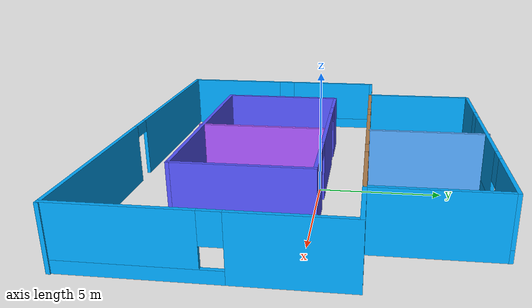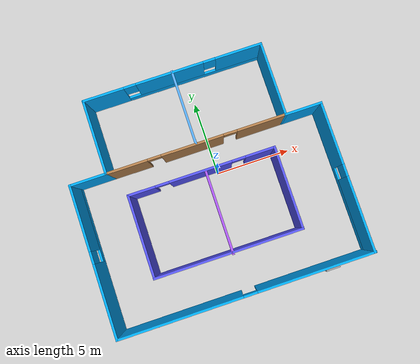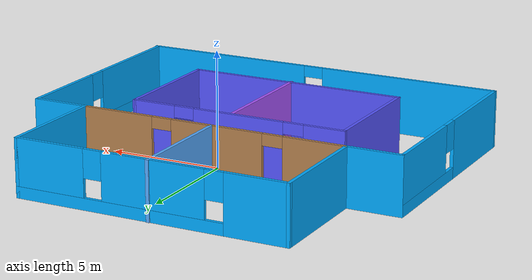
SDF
<?xml version='1.0'?>
<sdf version='1.6'>
  <model name='Building'>
    <pose frame=''>-0.730001 -0.551384 0 0 -0 0</pose>
    <link name='Door_2'>
      <collision name='Door_2_Collision'>
        <geometry>
          <box>
            <size>0.9 0.17 2</size>
          </box>
        </geometry>
        <pose frame=''>0 0 1 0 -0 0</pose>
      </collision>
      <visual name='Door_2_Visual'>
        <pose frame=''>0 0 1 0 -0 0</pose>
        <geometry>
          <box>
            <size>0.9 0.17 2</size>
          </box>
        </geometry>
        <material>
          <script>
            <uri>file://media/materials/scripts/gazebo.material</uri>
            <name>Gazebo/Grey</name>
          </script>
        </material>
      </visual>
      <pose frame=''>-5.33502 -7.44959 0 0 -0 0</pose>
    </link>
    <link name='Door_4'>
      <collision name='Door_4_Collision'>
        <geometry>
          <box>
            <size>0.9 0.17 2</size>
          </box>
        </geometry>
        <pose frame=''>0 0 1 0 -0 0</pose>
      </collision>
      <visual name='Door_4_Visual'>
        <pose frame=''>0 0 1 0 -0 0</pose>
        <geometry>
          <box>
            <size>0.9 0.17 2</size>
          </box>
        </geometry>
        <material>
          <script>
            <uri>file://media/materials/scripts/gazebo.material</uri>
            <name>Gazebo/Grey</name>
          </script>
        </material>
      </visual>
      <pose frame=''>5.5981 -7.54263 0 0 -0 0</pose>
    </link>
    <link name='Wall_0'>
      <pose frame=''>-8.2999 -2.44741 0 0 -0 1.57078</pose>
      <visual name='Wall_0_Visual_0'>
        <pose frame=''>-2.57696 0 1.25 0 -0 0</pose>
        <geometry>
          <box>
            <size>4.84608 0.15 2.5</size>
          </box>
        </geometry>
        <material>
          <script>
            <uri>file://media/materials/scripts/gazebo.material</uri>
            <name>Gazebo/Grey</name>
          </script>
          <ambient>0 0.666667 1 1</ambient>
        </material>
        <meta>
          <layer>0</layer>
        </meta>
      </visual>
      <collision name='Wall_0_Collision_0'>
        <geometry>
          <box>
            <size>4.84608 0.15 2.5</size>
          </box>
        </geometry>
        <pose frame=''>-2.57696 0 1.25 0 -0 0</pose>
      </collision>
      <visual name='Wall_0_Visual_1'>
        <pose frame=''>2.42304 0 0.25 0 -0 0</pose>
        <geometry>
          <box>
            <size>5.15392 0.15 0.5</size>
          </box>
        </geometry>
        <material>
          <script>
            <uri>file://media/materials/scripts/gazebo.material</uri>
            <name>Gazebo/Grey</name>
          </script>
          <ambient>0 0.666667 1 1</ambient>
        </material>
        <meta>
          <layer>0</layer>
        </meta>
      </visual>
      <collision name='Wall_0_Collision_1'>
        <geometry>
          <box>
            <size>5.15392 0.15 0.5</size>
          </box>
        </geometry>
        <pose frame=''>2.42304 0 0.25 0 -0 0</pose>
      </collision>
      <visual name='Wall_0_Visual_2'>
        <pose frame=''>2.82304 0 1.5 0 -0 0</pose>
        <geometry>
          <box>
            <size>4.35392 0.15 2</size>
          </box>
        </geometry>
        <material>
          <script>
            <uri>file://media/materials/scripts/gazebo.material</uri>
            <name>Gazebo/Grey</name>
          </script>
          <ambient>0 0.666667 1 1</ambient>
        </material>
        <meta>
          <layer>0</layer>
        </meta>
      </visual>
      <collision name='Wall_0_Collision_2'>
        <geometry>
          <box>
            <size>4.35392 0.15 2</size>
          </box>
        </geometry>
        <pose frame=''>2.82304 0 1.5 0 -0 0</pose>
      </collision>
      <visual name='Wall_0_Visual_3'>
        <pose frame=''>0.246081 0 1.9 0 -0 0</pose>
        <geometry>
          <box>
            <size>0.8 0.15 1.2</size>
          </box>
        </geometry>
        <material>
          <script>
            <uri>file://media/materials/scripts/gazebo.material</uri>
            <name>Gazebo/Grey</name>
          </script>
          <ambient>0 0.666667 1 1</ambient>
        </material>
        <meta>
          <layer>0</layer>
        </meta>
      </visual>
      <collision name='Wall_0_Collision_3'>
        <geometry>
          <box>
            <size>0.8 0.15 1.2</size>
          </box>
        </geometry>
        <pose frame=''>0.246081 0 1.9 0 -0 0</pose>
      </collision>
    </link>
    <link name='Wall_11'>
      <collision name='Wall_11_Collision'>
        <geometry>
          <box>
            <size>2.5 0.15 2.5</size>
          </box>
        </geometry>
        <pose frame=''>0 0 1.25 0 -0 0</pose>
      </collision>
      <visual name='Wall_11_Visual'>
        <pose frame=''>0 0 1.25 0 -0 0</pose>
        <geometry>
          <box>
            <size>2.5 0.15 2.5</size>
          </box>
        </geometry>
        <material>
          <script>
            <uri>file://media/materials/scripts/gazebo.material</uri>
            <name>Gazebo/Grey</name>
          </script>
          <ambient>0 0.666667 1 1</ambient>
        </material>
        <meta>
          <layer>0</layer>
        </meta>
      </visual>
      <pose frame=''>7.075 2.47738 0 0 -0 0</pose>
    </link>
    <link name='Wall_13'>
      <pose frame=''>8.25 -2.44762 0 0 0 -1.5708</pose>
      <visual name='Wall_13_Visual_0'>
        <pose frame=''>-2.90781 0 1.25 0 -0 0</pose>
        <geometry>
          <box>
            <size>4.18438 0.15 2.5</size>
          </box>
        </geometry>
        <material>
          <script>
            <uri>file://media/materials/scripts/gazebo.material</uri>
            <name>Gazebo/Grey</name>
          </script>
          <ambient>0 0.666667 1 1</ambient>
        </material>
        <meta>
          <layer>0</layer>
        </meta>
      </visual>
      <collision name='Wall_13_Collision_0'>
        <geometry>
          <box>
            <size>4.18438 0.15 2.5</size>
          </box>
        </geometry>
        <pose frame=''>-2.90781 0 1.25 0 -0 0</pose>
      </collision>
      <visual name='Wall_13_Visual_1'>
        <pose frame=''>2.09219 0 0.25 0 -0 0</pose>
        <geometry>
          <box>
            <size>5.81562 0.15 0.5</size>
          </box>
        </geometry>
        <material>
          <script>
            <uri>file://media/materials/scripts/gazebo.material</uri>
            <name>Gazebo/Grey</name>
          </script>
          <ambient>0 0.666667 1 1</ambient>
        </material>
        <meta>
          <layer>0</layer>
        </meta>
      </visual>
      <collision name='Wall_13_Collision_1'>
        <geometry>
          <box>
            <size>5.81562 0.15 0.5</size>
          </box>
        </geometry>
        <pose frame=''>2.09219 0 0.25 0 -0 0</pose>
      </collision>
      <visual name='Wall_13_Visual_2'>
        <pose frame=''>2.49219 0 1.5 0 -0 0</pose>
        <geometry>
          <box>
            <size>5.01562 0.15 2</size>
          </box>
        </geometry>
        <material>
          <script>
            <uri>file://media/materials/scripts/gazebo.material</uri>
            <name>Gazebo/Grey</name>
          </script>
          <ambient>0 0.666667 1 1</ambient>
        </material>
        <meta>
          <layer>0</layer>
        </meta>
      </visual>
      <collision name='Wall_13_Collision_2'>
        <geometry>
          <box>
            <size>5.01562 0.15 2</size>
          </box>
        </geometry>
        <pose frame=''>2.49219 0 1.5 0 -0 0</pose>
      </collision>
      <visual name='Wall_13_Visual_3'>
        <pose frame=''>-0.415615 0 1.9 0 -0 0</pose>
        <geometry>
          <box>
            <size>0.8 0.15 1.2</size>
          </box>
        </geometry>
        <material>
          <script>
            <uri>file://media/materials/scripts/gazebo.material</uri>
            <name>Gazebo/Grey</name>
          </script>
          <ambient>0 0.666667 1 1</ambient>
        </material>
        <meta>
          <layer>0</layer>
        </meta>
      </visual>
      <collision name='Wall_13_Collision_3'>
        <geometry>
          <box>
            <size>0.8 0.15 1.2</size>
          </box>
        </geometry>
        <pose frame=''>-0.415615 0 1.9 0 -0 0</pose>
      </collision>
    </link>
    <link name='Wall_15'>
      <pose frame=''>1e-06 -7.37262 0 0 -0 0</pose>
      <visual name='Wall_15_Visual_0'>
        <pose frame=''>-4.31184 0 1.25 0 -0 0</pose>
        <geometry>
          <box>
            <size>8.12632 0.15 2.5</size>
          </box>
        </geometry>
        <material>
          <script>
            <uri>file://media/materials/scripts/gazebo.material</uri>
            <name>Gazebo/Grey</name>
          </script>
          <ambient>0 0.666667 1 1</ambient>
        </material>
        <meta>
          <layer>0</layer>
        </meta>
      </visual>
      <collision name='Wall_15_Collision_0'>
        <geometry>
          <box>
            <size>8.12632 0.15 2.5</size>
          </box>
        </geometry>
        <pose frame=''>-4.31184 0 1.25 0 -0 0</pose>
      </collision>
      <visual name='Wall_15_Visual_1'>
        <pose frame=''>4.51316 0 1.25 0 -0 0</pose>
        <geometry>
          <box>
            <size>7.72368 0.15 2.5</size>
          </box>
        </geometry>
        <material>
          <script>
            <uri>file://media/materials/scripts/gazebo.material</uri>
            <name>Gazebo/Grey</name>
          </script>
          <ambient>0 0.666667 1 1</ambient>
        </material>
        <meta>
          <layer>0</layer>
        </meta>
      </visual>
      <collision name='Wall_15_Collision_1'>
        <geometry>
          <box>
            <size>7.72368 0.15 2.5</size>
          </box>
        </geometry>
        <pose frame=''>4.51316 0 1.25 0 -0 0</pose>
      </collision>
      <visual name='Wall_15_Visual_2'>
        <pose frame=''>0.201321 0 2.25 0 -0 0</pose>
        <geometry>
          <box>
            <size>0.9 0.15 0.5</size>
          </box>
        </geometry>
        <material>
          <script>
            <uri>file://media/materials/scripts/gazebo.material</uri>
            <name>Gazebo/Grey</name>
          </script>
          <ambient>0 0.666667 1 1</ambient>
        </material>
        <meta>
          <layer>0</layer>
        </meta>
      </visual>
      <collision name='Wall_15_Collision_2'>
        <geometry>
          <box>
            <size>0.9 0.15 0.5</size>
          </box>
        </geometry>
        <pose frame=''>0.201321 0 2.25 0 -0 0</pose>
      </collision>
    </link>
    <link name='Wall_17'>
      <collision name='Wall_17_Collision'>
        <geometry>
          <box>
            <size>5.5 0.15 2.5</size>
          </box>
        </geometry>
        <pose frame=''>0 0 1.25 0 -0 0</pose>
      </collision>
      <visual name='Wall_17_Visual'>
        <pose frame=''>0 0 1.25 0 -0 0</pose>
        <geometry>
          <box>
            <size>5.5 0.15 2.5</size>
          </box>
        </geometry>
        <material>
          <script>
            <uri>file://media/materials/scripts/gazebo.material</uri>
            <name>Gazebo/Grey</name>
          </script>
          <ambient>0.333333 0.333333 1 1</ambient>
        </material>
        <meta>
          <layer>0</layer>
        </meta>
      </visual>
      <pose frame=''>-5.05113 -1.93977 0 0 0 -1.5708</pose>
    </link>
    <link name='Wall_19'>
      <pose frame=''>-0.251134 0.735233 0 0 -0 0</pose>
      <visual name='Wall_19_Visual_0'>
        <pose frame=''>-3.95586 0 1.25 0 -0 0</pose>
        <geometry>
          <box>
            <size>1.83829 0.15 2.5</size>
          </box>
        </geometry>
        <material>
          <script>
            <uri>file://media/materials/scripts/gazebo.material</uri>
            <name>Gazebo/Grey</name>
          </script>
          <ambient>0.333333 0.333333 1 1</ambient>
        </material>
        <meta>
          <layer>0</layer>
        </meta>
      </visual>
      <collision name='Wall_19_Collision_0'>
        <geometry>
          <box>
            <size>1.83829 0.15 2.5</size>
          </box>
        </geometry>
        <pose frame=''>-3.95586 0 1.25 0 -0 0</pose>
      </collision>
      <visual name='Wall_19_Visual_1'>
        <pose frame=''>-0.076888 0 1.25 0 -0 0</pose>
        <geometry>
          <box>
            <size>4.11965 0.15 2.5</size>
          </box>
        </geometry>
        <material>
          <script>
            <uri>file://media/materials/scripts/gazebo.material</uri>
            <name>Gazebo/Grey</name>
          </script>
          <ambient>0.333333 0.333333 1 1</ambient>
        </material>
        <meta>
          <layer>0</layer>
        </meta>
      </visual>
      <collision name='Wall_19_Collision_1'>
        <geometry>
          <box>
            <size>4.11965 0.15 2.5</size>
          </box>
        </geometry>
        <pose frame=''>-0.076888 0 1.25 0 -0 0</pose>
      </collision>
      <visual name='Wall_19_Visual_2'>
        <pose frame=''>3.87897 0 1.25 0 -0 0</pose>
        <geometry>
          <box>
            <size>1.99206 0.15 2.5</size>
          </box>
        </geometry>
        <material>
          <script>
            <uri>file://media/materials/scripts/gazebo.material</uri>
            <name>Gazebo/Grey</name>
          </script>
          <ambient>0.333333 0.333333 1 1</ambient>
        </material>
        <meta>
          <layer>0</layer>
        </meta>
      </visual>
      <collision name='Wall_19_Collision_2'>
        <geometry>
          <box>
            <size>1.99206 0.15 2.5</size>
          </box>
        </geometry>
        <pose frame=''>3.87897 0 1.25 0 -0 0</pose>
      </collision>
      <visual name='Wall_19_Visual_3'>
        <pose frame=''>-2.58671 0 2.25 0 -0 0</pose>
        <geometry>
          <box>
            <size>0.9 0.15 0.5</size>
          </box>
        </geometry>
        <material>
          <script>
            <uri>file://media/materials/scripts/gazebo.material</uri>
            <name>Gazebo/Grey</name>
          </script>
          <ambient>0.333333 0.333333 1 1</ambient>
        </material>
        <meta>
          <layer>0</layer>
        </meta>
      </visual>
      <collision name='Wall_19_Collision_3'>
        <geometry>
          <box>
            <size>0.9 0.15 0.5</size>
          </box>
        </geometry>
        <pose frame=''>-2.58671 0 2.25 0 -0 0</pose>
      </collision>
      <visual name='Wall_19_Visual_4'>
        <pose frame=''>2.43294 0 2.25 0 -0 0</pose>
        <geometry>
          <box>
            <size>0.9 0.15 0.5</size>
          </box>
        </geometry>
        <material>
          <script>
            <uri>file://media/materials/scripts/gazebo.material</uri>
            <name>Gazebo/Grey</name>
          </script>
          <ambient>0.333333 0.333333 1 1</ambient>
        </material>
        <meta>
          <layer>0</layer>
        </meta>
      </visual>
      <collision name='Wall_19_Collision_4'>
        <geometry>
          <box>
            <size>0.9 0.15 0.5</size>
          </box>
        </geometry>
        <pose frame=''>2.43294 0 2.25 0 -0 0</pose>
      </collision>
    </link>
    <link name='Wall_2'>
      <collision name='Wall_2_Collision'>
        <geometry>
          <box>
            <size>2.5 0.15 2.5</size>
          </box>
        </geometry>
        <pose frame=''>0 0 1.25 0 -0 0</pose>
      </collision>
      <visual name='Wall_2_Visual'>
        <pose frame=''>0 0 1.25 0 -0 0</pose>
        <geometry>
          <box>
            <size>2.5 0.15 2.5</size>
          </box>
        </geometry>
        <material>
          <script>
            <uri>file://media/materials/scripts/gazebo.material</uri>
            <name>Gazebo/Grey</name>
          </script>
          <ambient>0 0.666667 1 1</ambient>
        </material>
        <meta>
          <layer>0</layer>
        </meta>
      </visual>
      <pose frame=''>-7.12479 2.47779 0 0 -0 0</pose>
    </link>
    <link name='Wall_20'>
      <collision name='Wall_20_Collision'>
        <geometry>
          <box>
            <size>5.5 0.15 2.5</size>
          </box>
        </geometry>
        <pose frame=''>0 0 1.25 0 -0 0</pose>
      </collision>
      <visual name='Wall_20_Visual'>
        <pose frame=''>0 0 1.25 0 -0 0</pose>
        <geometry>
          <box>
            <size>5.5 0.15 2.5</size>
          </box>
        </geometry>
        <material>
          <script>
            <uri>file://media/materials/scripts/gazebo.material</uri>
            <name>Gazebo/Grey</name>
          </script>
          <ambient>0.333333 0.333333 1 1</ambient>
        </material>
        <meta>
          <layer>0</layer>
        </meta>
      </visual>
      <pose frame=''>4.54887 -1.93977 0 0 0 -1.5708</pose>
    </link>
    <link name='Wall_21'>
      <collision name='Wall_21_Collision'>
        <geometry>
          <box>
            <size>9.75 0.15 2.5</size>
          </box>
        </geometry>
        <pose frame=''>0 0 1.25 0 -0 0</pose>
      </collision>
      <visual name='Wall_21_Visual'>
        <pose frame=''>0 0 1.25 0 -0 0</pose>
        <geometry>
          <box>
            <size>9.75 0.15 2.5</size>
          </box>
        </geometry>
        <material>
          <script>
            <uri>file://media/materials/scripts/gazebo.material</uri>
            <name>Gazebo/Grey</name>
          </script>
          <ambient>0.333333 0.333333 1 1</ambient>
        </material>
        <meta>
          <layer>0</layer>
        </meta>
      </visual>
      <pose frame=''>-0.251134 -4.61477 0 0 -0 3.14159</pose>
    </link>
    <link name='Wall_23'>
      <pose frame=''>-0.024896 2.47759 0 0 0 -3.5e-05</pose>
      <visual name='Wall_23_Visual_0'>
        <pose frame=''>-4.61149 0 1.25 0 -0 0</pose>
        <geometry>
          <box>
            <size>2.77681 0.15 2.5</size>
          </box>
        </geometry>
        <material>
          <script>
            <uri>file://media/materials/scripts/gazebo.material</uri>
            <name>Gazebo/Wood</name>
          </script>
          <ambient>1 1 1 1</ambient>
        </material>
        <meta>
          <layer>0</layer>
        </meta>
      </visual>
      <collision name='Wall_23_Collision_0'>
        <geometry>
          <box>
            <size>2.77681 0.15 2.5</size>
          </box>
        </geometry>
        <pose frame=''>-4.61149 0 1.25 0 -0 0</pose>
      </collision>
      <visual name='Wall_23_Visual_1'>
        <pose frame=''>-0.264836 0 1.25 0 -0 0</pose>
        <geometry>
          <box>
            <size>4.11649 0.15 2.5</size>
          </box>
        </geometry>
        <material>
          <script>
            <uri>file://media/materials/scripts/gazebo.material</uri>
            <name>Gazebo/Wood</name>
          </script>
          <ambient>1 1 1 1</ambient>
        </material>
        <meta>
          <layer>0</layer>
        </meta>
      </visual>
      <collision name='Wall_23_Collision_1'>
        <geometry>
          <box>
            <size>4.11649 0.15 2.5</size>
          </box>
        </geometry>
        <pose frame=''>-0.264836 0 1.25 0 -0 0</pose>
      </collision>
      <visual name='Wall_23_Visual_2'>
        <pose frame=''>4.34665 0 1.25 0 -0 0</pose>
        <geometry>
          <box>
            <size>3.30648 0.15 2.5</size>
          </box>
        </geometry>
        <material>
          <script>
            <uri>file://media/materials/scripts/gazebo.material</uri>
            <name>Gazebo/Wood</name>
          </script>
          <ambient>1 1 1 1</ambient>
        </material>
        <meta>
          <layer>0</layer>
        </meta>
      </visual>
      <collision name='Wall_23_Collision_2'>
        <geometry>
          <box>
            <size>3.30648 0.15 2.5</size>
          </box>
        </geometry>
        <pose frame=''>4.34665 0 1.25 0 -0 0</pose>
      </collision>
      <visual name='Wall_23_Visual_3'>
        <pose frame=''>-2.77308 0 2.25 0 -0 0</pose>
        <geometry>
          <box>
            <size>0.9 0.15 0.5</size>
          </box>
        </geometry>
        <material>
          <script>
            <uri>file://media/materials/scripts/gazebo.material</uri>
            <name>Gazebo/Wood</name>
          </script>
          <ambient>1 1 1 1</ambient>
        </material>
        <meta>
          <layer>0</layer>
        </meta>
      </visual>
      <collision name='Wall_23_Collision_3'>
        <geometry>
          <box>
            <size>0.9 0.15 0.5</size>
          </box>
        </geometry>
        <pose frame=''>-2.77308 0 2.25 0 -0 0</pose>
      </collision>
      <visual name='Wall_23_Visual_4'>
        <pose frame=''>2.24341 0 2.25 0 -0 0</pose>
        <geometry>
          <box>
            <size>0.9 0.15 0.5</size>
          </box>
        </geometry>
        <material>
          <script>
            <uri>file://media/materials/scripts/gazebo.material</uri>
            <name>Gazebo/Wood</name>
          </script>
          <ambient>1 1 1 1</ambient>
        </material>
        <meta>
          <layer>0</layer>
        </meta>
      </visual>
      <collision name='Wall_23_Collision_4'>
        <geometry>
          <box>
            <size>0.9 0.15 0.5</size>
          </box>
        </geometry>
        <pose frame=''>2.24341 0 2.25 0 -0 0</pose>
      </collision>
    </link>
    <link name='Wall_25'>
      <collision name='Wall_25_Collision'>
        <geometry>
          <box>
            <size>5 0.15 2.5</size>
          </box>
        </geometry>
        <pose frame=''>0 0 1.25 0 -0 0</pose>
      </collision>
      <visual name='Wall_25_Visual'>
        <pose frame=''>0 0 1.25 0 -0 0</pose>
        <geometry>
          <box>
            <size>5 0.15 2.5</size>
          </box>
        </geometry>
        <material>
          <script>
            <uri>file://media/materials/scripts/gazebo.material</uri>
            <name>Gazebo/Grey</name>
          </script>
          <ambient>0.333333 0.666667 1 1</ambient>
        </material>
        <meta>
          <layer>0</layer>
        </meta>
      </visual>
      <pose frame=''>-0.046998 4.94762 0 0 0 -1.5708</pose>
    </link>
    <link name='Wall_27'>
      <collision name='Wall_27_Collision'>
        <geometry>
          <box>
            <size>5.5 0.15 2.5</size>
          </box>
        </geometry>
        <pose frame=''>0 0 1.25 0 -0 0</pose>
      </collision>
      <visual name='Wall_27_Visual'>
        <pose frame=''>0 0 1.25 0 -0 0</pose>
        <geometry>
          <box>
            <size>5.5 0.15 2.5</size>
          </box>
        </geometry>
        <material>
          <script>
            <uri>file://media/materials/scripts/gazebo.material</uri>
            <name>Gazebo/Grey</name>
          </script>
          <ambient>0.666667 0.333333 1 1</ambient>
        </material>
        <meta>
          <layer>0</layer>
        </meta>
      </visual>
      <pose frame=''>-0.006543 -2.01801 0 0 0 -1.5708</pose>
    </link>
    <link name='Wall_4'>
      <collision name='Wall_4_Collision'>
        <geometry>
          <box>
            <size>5 0.15 2.5</size>
          </box>
        </geometry>
        <pose frame=''>0 0 1.25 0 -0 0</pose>
      </collision>
      <visual name='Wall_4_Visual'>
        <pose frame=''>0 0 1.25 0 -0 0</pose>
        <geometry>
          <box>
            <size>5 0.15 2.5</size>
          </box>
        </geometry>
        <material>
          <script>
            <uri>file://media/materials/scripts/gazebo.material</uri>
            <name>Gazebo/Grey</name>
          </script>
          <ambient>0 0.666667 1 1</ambient>
        </material>
        <meta>
          <layer>0</layer>
        </meta>
      </visual>
      <pose frame=''>-5.94979 4.9028 0 0 -0 1.5708</pose>
    </link>
    <link name='Wall_6'>
      <pose frame=''>-0.024896 7.32759 0 0 0 -3.5e-05</pose>
      <visual name='Wall_6_Visual_0'>
        <pose frame=''>-4.62699 0 1.25 0 -0 0</pose>
        <geometry>
          <box>
            <size>2.74601 0.15 2.5</size>
          </box>
        </geometry>
        <material>
          <script>
            <uri>file://media/materials/scripts/gazebo.material</uri>
            <name>Gazebo/Grey</name>
          </script>
          <ambient>0 0.666667 1 1</ambient>
        </material>
        <meta>
          <layer>0</layer>
        </meta>
      </visual>
      <collision name='Wall_6_Collision_0'>
        <geometry>
          <box>
            <size>2.74601 0.15 2.5</size>
          </box>
        </geometry>
        <pose frame=''>-4.62699 0 1.25 0 -0 0</pose>
      </collision>
      <visual name='Wall_6_Visual_1'>
        <pose frame=''>1.37301 0 0.25 0 -0 0</pose>
        <geometry>
          <box>
            <size>9.25399 0.15 0.5</size>
          </box>
        </geometry>
        <material>
          <script>
            <uri>file://media/materials/scripts/gazebo.material</uri>
            <name>Gazebo/Grey</name>
          </script>
          <ambient>0 0.666667 1 1</ambient>
        </material>
        <meta>
          <layer>0</layer>
        </meta>
      </visual>
      <collision name='Wall_6_Collision_1'>
        <geometry>
          <box>
            <size>9.25399 0.15 0.5</size>
          </box>
        </geometry>
        <pose frame=''>1.37301 0 0.25 0 -0 0</pose>
      </collision>
      <visual name='Wall_6_Visual_2'>
        <pose frame=''>-0.204149 0 1.5 0 -0 0</pose>
        <geometry>
          <box>
            <size>4.49968 0.15 2</size>
          </box>
        </geometry>
        <material>
          <script>
            <uri>file://media/materials/scripts/gazebo.material</uri>
            <name>Gazebo/Grey</name>
          </script>
          <ambient>0 0.666667 1 1</ambient>
        </material>
        <meta>
          <layer>0</layer>
        </meta>
      </visual>
      <collision name='Wall_6_Collision_2'>
        <geometry>
          <box>
            <size>4.49968 0.15 2</size>
          </box>
        </geometry>
        <pose frame=''>-0.204149 0 1.5 0 -0 0</pose>
      </collision>
      <visual name='Wall_6_Visual_3'>
        <pose frame=''>4.42284 0 1.5 0 -0 0</pose>
        <geometry>
          <box>
            <size>3.15431 0.15 2</size>
          </box>
        </geometry>
        <material>
          <script>
            <uri>file://media/materials/scripts/gazebo.material</uri>
            <name>Gazebo/Grey</name>
          </script>
          <ambient>0 0.666667 1 1</ambient>
        </material>
        <meta>
          <layer>0</layer>
        </meta>
      </visual>
      <collision name='Wall_6_Collision_3'>
        <geometry>
          <box>
            <size>3.15431 0.15 2</size>
          </box>
        </geometry>
        <pose frame=''>4.42284 0 1.5 0 -0 0</pose>
      </collision>
      <visual name='Wall_6_Visual_4'>
        <pose frame=''>-2.85399 0 1.9 0 -0 0</pose>
        <geometry>
          <box>
            <size>0.8 0.15 1.2</size>
          </box>
        </geometry>
        <material>
          <script>
            <uri>file://media/materials/scripts/gazebo.material</uri>
            <name>Gazebo/Grey</name>
          </script>
          <ambient>0 0.666667 1 1</ambient>
        </material>
        <meta>
          <layer>0</layer>
        </meta>
      </visual>
      <collision name='Wall_6_Collision_4'>
        <geometry>
          <box>
            <size>0.8 0.15 1.2</size>
          </box>
        </geometry>
        <pose frame=''>-2.85399 0 1.9 0 -0 0</pose>
      </collision>
      <visual name='Wall_6_Visual_5'>
        <pose frame=''>2.44569 0 1.9 0 -0 0</pose>
        <geometry>
          <box>
            <size>0.8 0.15 1.2</size>
          </box>
        </geometry>
        <material>
          <script>
            <uri>file://media/materials/scripts/gazebo.material</uri>
            <name>Gazebo/Grey</name>
          </script>
          <ambient>0 0.666667 1 1</ambient>
        </material>
        <meta>
          <layer>0</layer>
        </meta>
      </visual>
      <collision name='Wall_6_Collision_5'>
        <geometry>
          <box>
            <size>0.8 0.15 1.2</size>
          </box>
        </geometry>
        <pose frame=''>2.44569 0 1.9 0 -0 0</pose>
      </collision>
    </link>
    <link name='Wall_9'>
      <collision name='Wall_9_Collision'>
        <geometry>
          <box>
            <size>5 0.15 2.5</size>
          </box>
        </geometry>
        <pose frame=''>0 0 1.25 0 -0 0</pose>
      </collision>
      <visual name='Wall_9_Visual'>
        <pose frame=''>0 0 1.25 0 -0 0</pose>
        <geometry>
          <box>
            <size>5 0.15 2.5</size>
          </box>
        </geometry>
        <material>
          <script>
            <uri>file://media/materials/scripts/gazebo.material</uri>
            <name>Gazebo/Grey</name>
          </script>
          <ambient>0 0.666667 1 1</ambient>
        </material>
        <meta>
          <layer>0</layer>
        </meta>
      </visual>
      <pose frame=''>5.9 4.90238 0 0 0 -1.5708</pose>
    </link>
    <static>1</static>
  </model>
</sdf>
